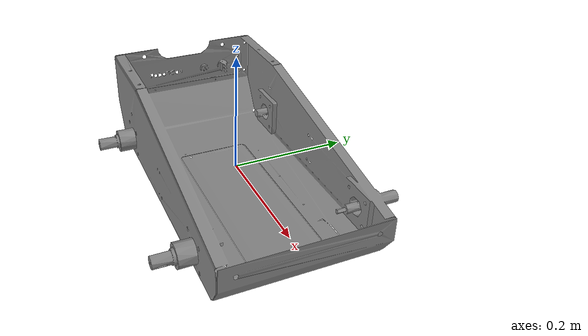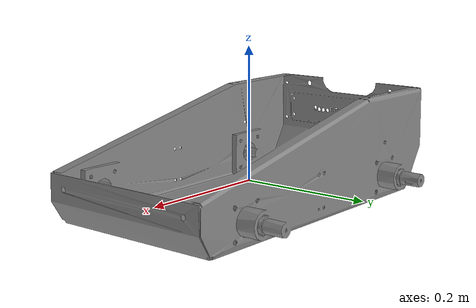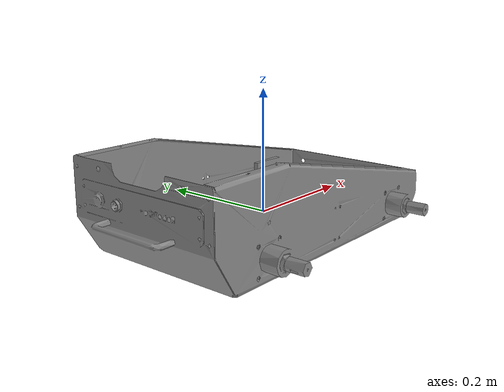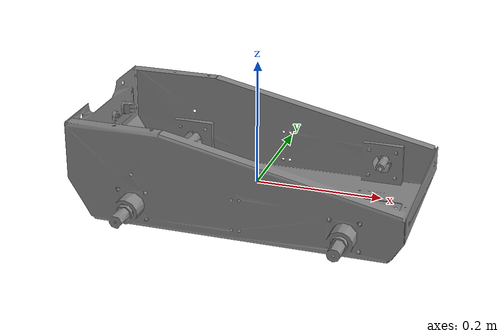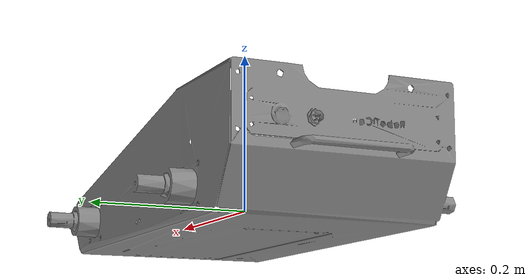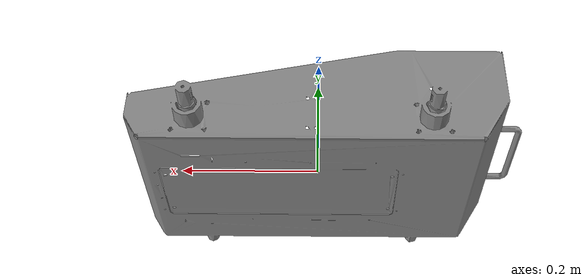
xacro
<robot name="base_link"><link name="base_link">
    <inertial>
      <origin rpy="0 0 0" xyz="-0.0205330571995271 4.54409684683429E-05 0.00735986203300292" />
      <mass value="45.0894999160313" />
      <inertia ixx="0.723503030508731" ixy="-46.8485359152423E-05" ixz="-0.0875564429068847" iyy="1.38127064231828" iyz="11.9695110167269E-05" izz="1.94371448739423" />
    </inertial>
    <visual>
      <origin rpy="0 0 0" xyz="0 0 0" />
      <geometry>
        <mesh filename="package://robotican_description/komodo/meshes/col_base_link.STL" />
      </geometry>
      <material name="">
       <color rgba="0.52941176470588 0.52941176470588 0.52941176470588 1" />
      </material>
    </visual>
    <collision>
      <origin rpy="0 0 0" xyz="-0.065 0 0" />
      <geometry>
        <mesh filename="package://robotican_description/komodo/meshes/col_base_link.STL" />
      </geometry>
    </collision>
  </link>
  </robot>
